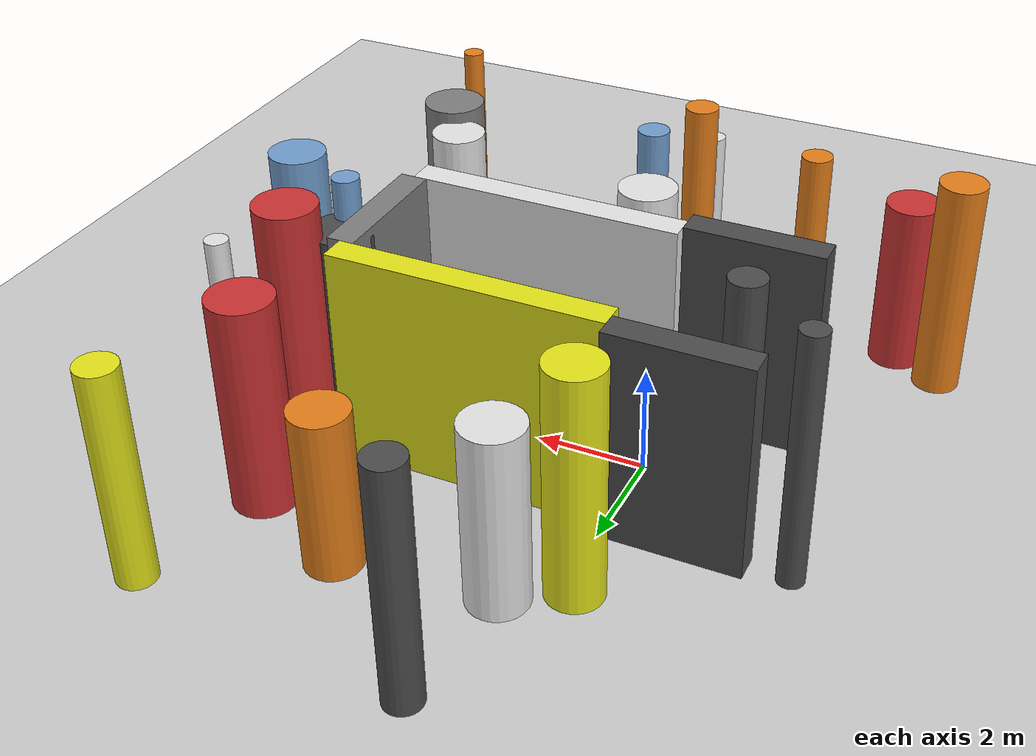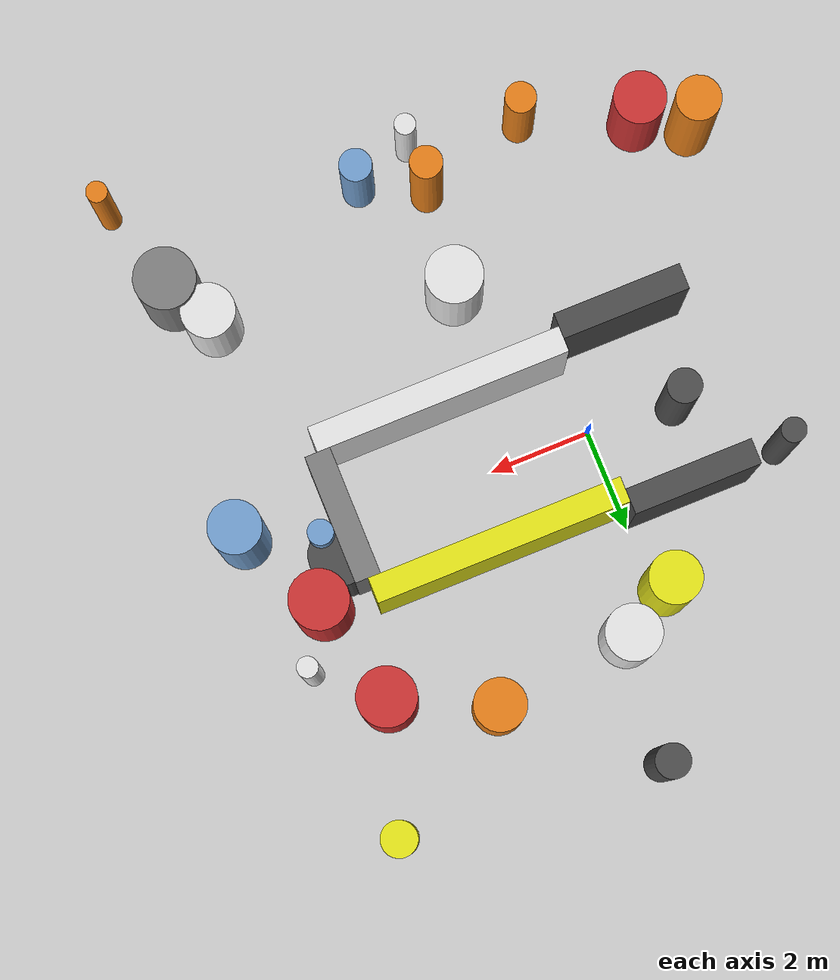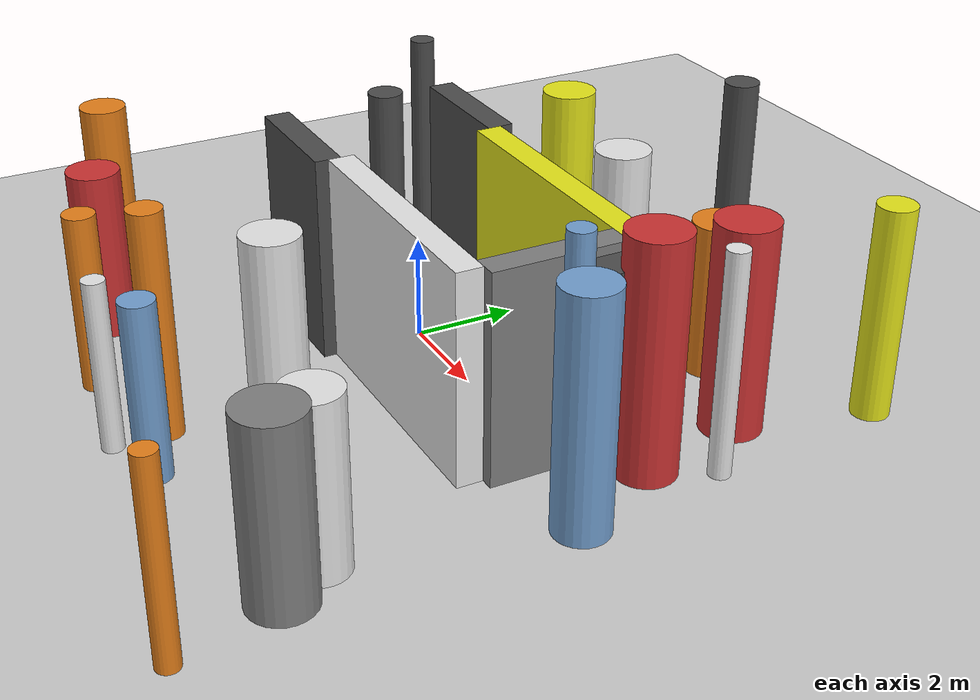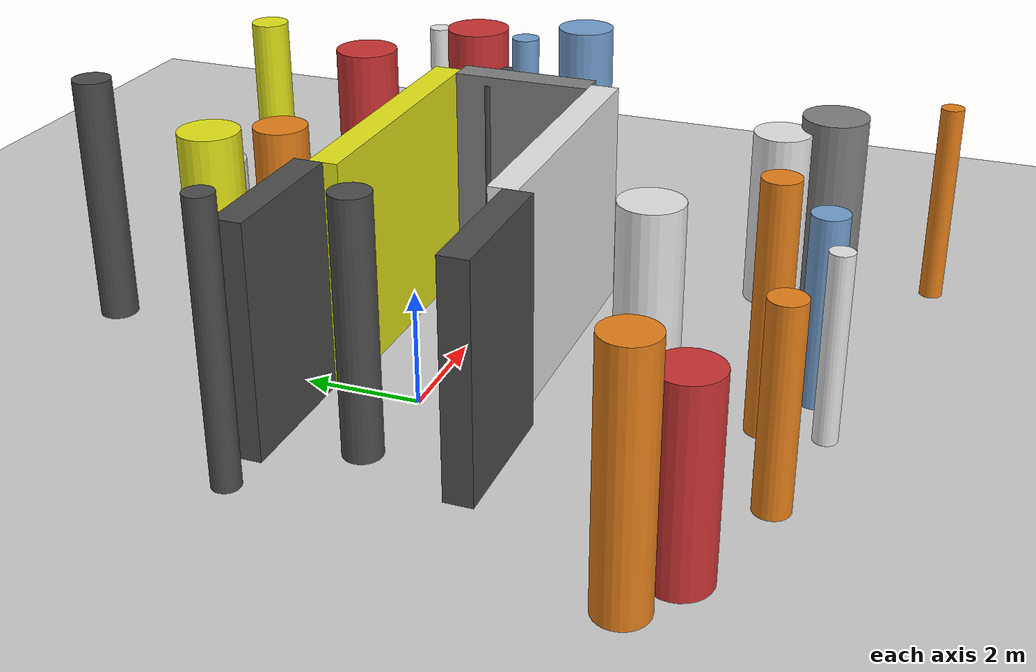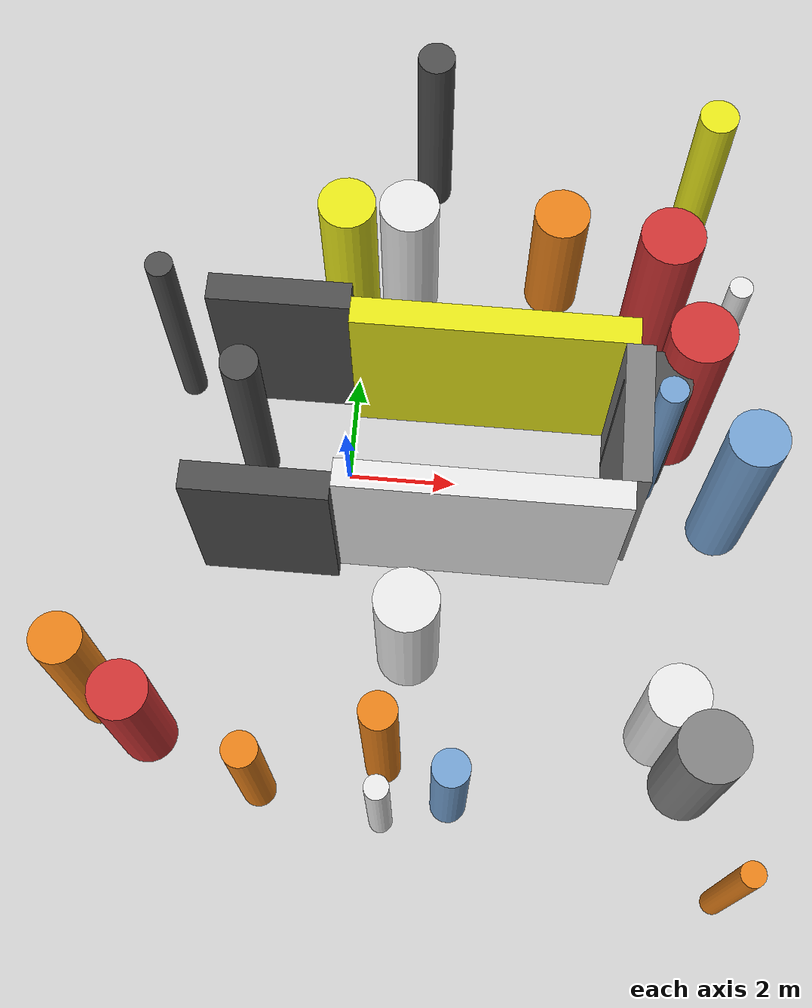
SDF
<?xml version='1.0'?>
<sdf version='1.6'>
  <world name='routeA_rl_v1__dense_recovery__rl_train__cul_de_sac_trap__000034'>
    <!-- Sun light -->
    <light name='sun' type='directional'>
      <cast_shadows>1</cast_shadows>
      <pose>0 0 10 0 0 0</pose>
      <diffuse>0.8 0.8 0.8 1</diffuse>
      <specular>0.2 0.2 0.2 1</specular>
      <attenuation>
        <range>1000</range>
        <constant>0.9</constant>
        <linear>0.01</linear>
        <quadratic>0.001</quadratic>
      </attenuation>
      <direction>-0.5 0.1 -0.9</direction>
    </light>

    <!-- Ground plane -->
    <model name='ground_plane'>
      <static>1</static>
      <link name='link'>
        <collision name='collision'>
          <geometry>
            <plane>
              <normal>0 0 1</normal>
              <size>100 100</size>
            </plane>
          </geometry>
          <surface>
            <contact>
              <collide_bitmask>65535</collide_bitmask>
              <ode/>
            </contact>
            <friction>
              <ode>
                <mu>100</mu>
                <mu2>50</mu2>
              </ode>
              <torsional><ode/></torsional>
            </friction>
            <bounce/>
          </surface>
          <max_contacts>10</max_contacts>
        </collision>
        <visual name='visual'>
          <cast_shadows>0</cast_shadows>
          <geometry>
            <plane>
              <normal>0 0 1</normal>
              <size>100 100</size>
            </plane>
          </geometry>
          <material>
            <script>
              <uri>file://media/materials/scripts/gazebo.material</uri>
              <n>Gazebo/Grey</n>
            </script>
          </material>
        </visual>
      </link>
    </model>

    <!-- Environment -->
    <magnetic_field>6e-06 2.3e-05 -4.2e-05</magnetic_field>
    <atmosphere type='adiabatic'/>
    <physics name='default_physics' default='0' type='ode'>
      <gravity>0 0 -9.8</gravity>
      <max_step_size>0.004</max_step_size>
      <real_time_factor>1</real_time_factor>
      <real_time_update_rate>250</real_time_update_rate>
    </physics>
    <scene>
      <ambient>0.4 0.4 0.4 1</ambient>
      <background>0.7 0.7 0.7 1</background>
      <shadows>1</shadows>
    </scene>
    <wind/>
    <spherical_coordinates>
      <surface_model>EARTH_WGS84</surface_model>
      <latitude_deg>0</latitude_deg>
      <longitude_deg>0</longitude_deg>
      <elevation>0</elevation>
      <heading_deg>0</heading_deg>
    </spherical_coordinates>

    <!-- ============ OBSTACLES (28) ============ -->
    <model name='trap_side_l'>
      <static>1</static>
      <link name='link'>
        <visual name='visual'>
          <geometry>
            <box>
              <size>5.0000 0.5000 4.0000</size>
            </box>
          </geometry>
          <material>
            <script>
              <n>Gazebo/White</n>
              <uri>file://media/materials/scripts/gazebo.material</uri>
            </script>
            <ambient>0.9 0.9 0.9 1</ambient>
          </material>
        </visual>
        <collision name='collision'>
          <geometry>
            <box>
              <size>5.0000 0.5000 4.0000</size>
            </box>
          </geometry>
          <max_contacts>10</max_contacts>
          <surface>
            <contact><ode/></contact>
            <bounce/>
            <friction>
              <ode><mu>1</mu><mu2>1</mu2></ode>
              <torsional><ode/></torsional>
            </friction>
          </surface>
        </collision>
      </link>
      <pose>2.5000 -1.5000 2.0000 0 0 0.0000</pose>
    </model>

    <model name='trap_side_r'>
      <static>1</static>
      <link name='link'>
        <visual name='visual'>
          <geometry>
            <box>
              <size>5.0000 0.5000 4.0000</size>
            </box>
          </geometry>
          <material>
            <script>
              <n>Gazebo/Yellow</n>
              <uri>file://media/materials/scripts/gazebo.material</uri>
            </script>
            <ambient>0.9 0.9 0.1 1</ambient>
          </material>
        </visual>
        <collision name='collision'>
          <geometry>
            <box>
              <size>5.0000 0.5000 4.0000</size>
            </box>
          </geometry>
          <max_contacts>10</max_contacts>
          <surface>
            <contact><ode/></contact>
            <bounce/>
            <friction>
              <ode><mu>1</mu><mu2>1</mu2></ode>
              <torsional><ode/></torsional>
            </friction>
          </surface>
        </collision>
      </link>
      <pose>2.5000 1.5000 2.0000 0 0 0.0000</pose>
    </model>

    <model name='trap_back'>
      <static>1</static>
      <link name='link'>
        <visual name='visual'>
          <geometry>
            <box>
              <size>0.5000 2.5000 4.0000</size>
            </box>
          </geometry>
          <material>
            <script>
              <n>Gazebo/Grey</n>
              <uri>file://media/materials/scripts/gazebo.material</uri>
            </script>
            <ambient>0.5 0.5 0.5 1</ambient>
          </material>
        </visual>
        <collision name='collision'>
          <geometry>
            <box>
              <size>0.5000 2.5000 4.0000</size>
            </box>
          </geometry>
          <max_contacts>10</max_contacts>
          <surface>
            <contact><ode/></contact>
            <bounce/>
            <friction>
              <ode><mu>1</mu><mu2>1</mu2></ode>
              <torsional><ode/></torsional>
            </friction>
          </surface>
        </collision>
      </link>
      <pose>5.0000 0.0000 2.0000 0 0 0.0000</pose>
    </model>

    <model name='trap_funnel_l'>
      <static>1</static>
      <link name='link'>
        <visual name='visual'>
          <geometry>
            <box>
              <size>2.5000 0.5000 4.0000</size>
            </box>
          </geometry>
          <material>
            <script>
              <n>Gazebo/DarkGrey</n>
              <uri>file://media/materials/scripts/gazebo.material</uri>
            </script>
            <ambient>0.3 0.3 0.3 1</ambient>
          </material>
        </visual>
        <collision name='collision'>
          <geometry>
            <box>
              <size>2.5000 0.5000 4.0000</size>
            </box>
          </geometry>
          <max_contacts>10</max_contacts>
          <surface>
            <contact><ode/></contact>
            <bounce/>
            <friction>
              <ode><mu>1</mu><mu2>1</mu2></ode>
              <torsional><ode/></torsional>
            </friction>
          </surface>
        </collision>
      </link>
      <pose>-1.2500 -1.7500 2.0000 0 0 0.0000</pose>
    </model>

    <model name='trap_funnel_r'>
      <static>1</static>
      <link name='link'>
        <visual name='visual'>
          <geometry>
            <box>
              <size>2.5000 0.5000 4.0000</size>
            </box>
          </geometry>
          <material>
            <script>
              <n>Gazebo/DarkGrey</n>
              <uri>file://media/materials/scripts/gazebo.material</uri>
            </script>
            <ambient>0.3 0.3 0.3 1</ambient>
          </material>
        </visual>
        <collision name='collision'>
          <geometry>
            <box>
              <size>2.5000 0.5000 4.0000</size>
            </box>
          </geometry>
          <max_contacts>10</max_contacts>
          <surface>
            <contact><ode/></contact>
            <bounce/>
            <friction>
              <ode><mu>1</mu><mu2>1</mu2></ode>
              <torsional><ode/></torsional>
            </friction>
          </surface>
        </collision>
      </link>
      <pose>-1.2500 1.7500 2.0000 0 0 0.0000</pose>
    </model>

    <model name='trap_scatter_0'>
      <static>1</static>
      <link name='link'>
        <visual name='visual'>
          <geometry>
            <cylinder>
              <radius>0.4329</radius>
              <length>4.1769</length>
            </cylinder>
          </geometry>
          <material>
            <script>
              <n>Gazebo/Orange</n>
              <uri>file://media/materials/scripts/gazebo.material</uri>
            </script>
            <ambient>0.9 0.5 0.1 1</ambient>
          </material>
        </visual>
        <collision name='collision'>
          <geometry>
            <cylinder>
              <radius>0.4329</radius>
              <length>4.1769</length>
            </cylinder>
          </geometry>
          <max_contacts>10</max_contacts>
          <surface>
            <contact><ode/></contact>
            <bounce/>
            <friction>
              <ode><mu>1</mu><mu2>1</mu2></ode>
              <torsional><ode/></torsional>
            </friction>
          </surface>
        </collision>
      </link>
      <pose>-3.9899 -4.7010 2.0885 0 0 0.0000</pose>
    </model>

    <model name='trap_scatter_1'>
      <static>1</static>
      <link name='link'>
        <visual name='visual'>
          <geometry>
            <cylinder>
              <radius>0.5722</radius>
              <length>4.5000</length>
            </cylinder>
          </geometry>
          <material>
            <script>
              <n>Gazebo/Red</n>
              <uri>file://media/materials/scripts/gazebo.material</uri>
            </script>
            <ambient>0.8 0.2 0.2 1</ambient>
          </material>
        </visual>
        <collision name='collision'>
          <geometry>
            <cylinder>
              <radius>0.5722</radius>
              <length>4.5000</length>
            </cylinder>
          </geometry>
          <max_contacts>10</max_contacts>
          <surface>
            <contact><ode/></contact>
            <bounce/>
            <friction>
              <ode><mu>1</mu><mu2>1</mu2></ode>
              <torsional><ode/></torsional>
            </friction>
          </surface>
        </collision>
      </link>
      <pose>5.9798 1.3063 2.2500 0 0 0.0000</pose>
    </model>

    <model name='trap_scatter_2'>
      <static>1</static>
      <link name='link'>
        <visual name='visual'>
          <geometry>
            <cylinder>
              <radius>0.3370</radius>
              <length>4.4416</length>
            </cylinder>
          </geometry>
          <material>
            <script>
              <n>Gazebo/DarkGrey</n>
              <uri>file://media/materials/scripts/gazebo.material</uri>
            </script>
            <ambient>0.3 0.3 0.3 1</ambient>
          </material>
        </visual>
        <collision name='collision'>
          <geometry>
            <cylinder>
              <radius>0.3370</radius>
              <length>4.4416</length>
            </cylinder>
          </geometry>
          <max_contacts>10</max_contacts>
          <surface>
            <contact><ode/></contact>
            <bounce/>
            <friction>
              <ode><mu>1</mu><mu2>1</mu2></ode>
              <torsional><ode/></torsional>
            </friction>
          </surface>
        </collision>
      </link>
      <pose>1.0976 6.4455 2.2208 0 0 0.0000</pose>
    </model>

    <model name='trap_scatter_3'>
      <static>1</static>
      <link name='link'>
        <visual name='visual'>
          <geometry>
            <cylinder>
              <radius>0.5747</radius>
              <length>4.0114</length>
            </cylinder>
          </geometry>
          <material>
            <script>
              <n>Gazebo/Red</n>
              <uri>file://media/materials/scripts/gazebo.material</uri>
            </script>
            <ambient>0.8 0.2 0.2 1</ambient>
          </material>
        </visual>
        <collision name='collision'>
          <geometry>
            <cylinder>
              <radius>0.5747</radius>
              <length>4.0114</length>
            </cylinder>
          </geometry>
          <max_contacts>10</max_contacts>
          <surface>
            <contact><ode/></contact>
            <bounce/>
            <friction>
              <ode><mu>1</mu><mu2>1</mu2></ode>
              <torsional><ode/></torsional>
            </friction>
          </surface>
        </collision>
      </link>
      <pose>5.4939 3.3982 2.0057 0 0 0.0000</pose>
    </model>

    <model name='trap_scatter_4'>
      <static>1</static>
      <link name='link'>
        <visual name='visual'>
          <geometry>
            <cylinder>
              <radius>0.3167</radius>
              <length>3.3378</length>
            </cylinder>
          </geometry>
          <material>
            <script>
              <n>Gazebo/Blue</n>
              <uri>file://media/materials/scripts/gazebo.material</uri>
            </script>
            <ambient>0.447 0.624 0.812 1</ambient>
          </material>
        </visual>
        <collision name='collision'>
          <geometry>
            <cylinder>
              <radius>0.3167</radius>
              <length>3.3378</length>
            </cylinder>
          </geometry>
          <max_contacts>10</max_contacts>
          <surface>
            <contact><ode/></contact>
            <bounce/>
            <friction>
              <ode><mu>1</mu><mu2>1</mu2></ode>
              <torsional><ode/></torsional>
            </friction>
          </surface>
        </collision>
      </link>
      <pose>2.3325 -6.0457 1.6689 0 0 0.0000</pose>
    </model>

    <model name='trap_scatter_5'>
      <static>1</static>
      <link name='link'>
        <visual name='visual'>
          <geometry>
            <cylinder>
              <radius>0.5125</radius>
              <length>3.0070</length>
            </cylinder>
          </geometry>
          <material>
            <script>
              <n>Gazebo/Orange</n>
              <uri>file://media/materials/scripts/gazebo.material</uri>
            </script>
            <ambient>0.9 0.5 0.1 1</ambient>
          </material>
        </visual>
        <collision name='collision'>
          <geometry>
            <cylinder>
              <radius>0.5125</radius>
              <length>3.0070</length>
            </cylinder>
          </geometry>
          <max_contacts>10</max_contacts>
          <surface>
            <contact><ode/></contact>
            <bounce/>
            <friction>
              <ode><mu>1</mu><mu2>1</mu2></ode>
              <torsional><ode/></torsional>
            </friction>
          </surface>
        </collision>
      </link>
      <pose>3.5950 4.2890 1.5035 0 0 0.0000</pose>
    </model>

    <model name='trap_scatter_7'>
      <static>1</static>
      <link name='link'>
        <visual name='visual'>
          <geometry>
            <cylinder>
              <radius>0.3540</radius>
              <length>4.0636</length>
            </cylinder>
          </geometry>
          <material>
            <script>
              <n>Gazebo/Yellow</n>
              <uri>file://media/materials/scripts/gazebo.material</uri>
            </script>
            <ambient>0.9 0.9 0.1 1</ambient>
          </material>
        </visual>
        <collision name='collision'>
          <geometry>
            <cylinder>
              <radius>0.3540</radius>
              <length>4.0636</length>
            </cylinder>
          </geometry>
          <max_contacts>10</max_contacts>
          <surface>
            <contact><ode/></contact>
            <bounce/>
            <friction>
              <ode><mu>1</mu><mu2>1</mu2></ode>
              <torsional><ode/></torsional>
            </friction>
          </surface>
        </collision>
      </link>
      <pose>6.2516 5.8937 2.0318 0 0 0.0000</pose>
    </model>

    <model name='trap_scatter_9'>
      <static>1</static>
      <link name='link'>
        <visual name='visual'>
          <geometry>
            <cylinder>
              <radius>0.3149</radius>
              <length>4.3096</length>
            </cylinder>
          </geometry>
          <material>
            <script>
              <n>Gazebo/Orange</n>
              <uri>file://media/materials/scripts/gazebo.material</uri>
            </script>
            <ambient>0.9 0.5 0.1 1</ambient>
          </material>
        </visual>
        <collision name='collision'>
          <geometry>
            <cylinder>
              <radius>0.3149</radius>
              <length>4.3096</length>
            </cylinder>
          </geometry>
          <max_contacts>10</max_contacts>
          <surface>
            <contact><ode/></contact>
            <bounce/>
            <friction>
              <ode><mu>1</mu><mu2>1</mu2></ode>
              <torsional><ode/></torsional>
            </friction>
          </surface>
        </collision>
      </link>
      <pose>1.1424 -5.4583 2.1548 0 0 0.0000</pose>
    </model>

    <model name='trap_scatter_10'>
      <static>1</static>
      <link name='link'>
        <visual name='visual'>
          <geometry>
            <cylinder>
              <radius>0.5563</radius>
              <length>3.5260</length>
            </cylinder>
          </geometry>
          <material>
            <script>
              <n>Gazebo/White</n>
              <uri>file://media/materials/scripts/gazebo.material</uri>
            </script>
            <ambient>0.9 0.9 0.9 1</ambient>
          </material>
        </visual>
        <collision name='collision'>
          <geometry>
            <cylinder>
              <radius>0.5563</radius>
              <length>3.5260</length>
            </cylinder>
          </geometry>
          <max_contacts>10</max_contacts>
          <surface>
            <contact><ode/></contact>
            <bounce/>
            <friction>
              <ode><mu>1</mu><mu2>1</mu2></ode>
              <torsional><ode/></torsional>
            </friction>
          </surface>
        </collision>
      </link>
      <pose>1.3998 -3.4263 1.7630 0 0 0.0000</pose>
    </model>

    <model name='trap_scatter_11'>
      <static>1</static>
      <link name='link'>
        <visual name='visual'>
          <geometry>
            <cylinder>
              <radius>0.5974</radius>
              <length>3.4501</length>
            </cylinder>
          </geometry>
          <material>
            <script>
              <n>Gazebo/Grey</n>
              <uri>file://media/materials/scripts/gazebo.material</uri>
            </script>
            <ambient>0.5 0.5 0.5 1</ambient>
          </material>
        </visual>
        <collision name='collision'>
          <geometry>
            <cylinder>
              <radius>0.5974</radius>
              <length>3.4501</length>
            </cylinder>
          </geometry>
          <max_contacts>10</max_contacts>
          <surface>
            <contact><ode/></contact>
            <bounce/>
            <friction>
              <ode><mu>1</mu><mu2>1</mu2></ode>
              <torsional><ode/></torsional>
            </friction>
          </surface>
        </collision>
      </link>
      <pose>6.4232 -5.3846 1.7250 0 0 0.0000</pose>
    </model>

    <model name='trap_scatter_12'>
      <static>1</static>
      <link name='link'>
        <visual name='visual'>
          <geometry>
            <cylinder>
              <radius>0.5073</radius>
              <length>4.3664</length>
            </cylinder>
          </geometry>
          <material>
            <script>
              <n>Gazebo/Yellow</n>
              <uri>file://media/materials/scripts/gazebo.material</uri>
            </script>
            <ambient>0.9 0.9 0.1 1</ambient>
          </material>
        </visual>
        <collision name='collision'>
          <geometry>
            <cylinder>
              <radius>0.5073</radius>
              <length>4.3664</length>
            </cylinder>
          </geometry>
          <max_contacts>10</max_contacts>
          <surface>
            <contact><ode/></contact>
            <bounce/>
            <friction>
              <ode><mu>1</mu><mu2>1</mu2></ode>
              <torsional><ode/></torsional>
            </friction>
          </surface>
        </collision>
      </link>
      <pose>-0.2215 3.3633 2.1832 0 0 0.0000</pose>
    </model>

    <model name='trap_scatter_13'>
      <static>1</static>
      <link name='link'>
        <visual name='visual'>
          <geometry>
            <cylinder>
              <radius>0.2394</radius>
              <length>4.7410</length>
            </cylinder>
          </geometry>
          <material>
            <script>
              <n>Gazebo/DarkGrey</n>
              <uri>file://media/materials/scripts/gazebo.material</uri>
            </script>
            <ambient>0.3 0.3 0.3 1</ambient>
          </material>
        </visual>
        <collision name='collision'>
          <geometry>
            <cylinder>
              <radius>0.2394</radius>
              <length>4.7410</length>
            </cylinder>
          </geometry>
          <max_contacts>10</max_contacts>
          <surface>
            <contact><ode/></contact>
            <bounce/>
            <friction>
              <ode><mu>1</mu><mu2>1</mu2></ode>
              <torsional><ode/></torsional>
            </friction>
          </surface>
        </collision>
      </link>
      <pose>-3.2084 1.6893 2.3705 0 0 0.0000</pose>
    </model>

    <model name='trap_scatter_14'>
      <static>1</static>
      <link name='link'>
        <visual name='visual'>
          <geometry>
            <cylinder>
              <radius>0.2051</radius>
              <length>4.2136</length>
            </cylinder>
          </geometry>
          <material>
            <script>
              <n>Gazebo/White</n>
              <uri>file://media/materials/scripts/gazebo.material</uri>
            </script>
            <ambient>0.9 0.9 0.9 1</ambient>
          </material>
        </visual>
        <collision name='collision'>
          <geometry>
            <cylinder>
              <radius>0.2051</radius>
              <length>4.2136</length>
            </cylinder>
          </geometry>
          <max_contacts>10</max_contacts>
          <surface>
            <contact><ode/></contact>
            <bounce/>
            <friction>
              <ode><mu>1</mu><mu2>1</mu2></ode>
              <torsional><ode/></torsional>
            </friction>
          </surface>
        </collision>
      </link>
      <pose>6.6346 2.3613 2.1068 0 0 0.0000</pose>
    </model>

    <model name='trap_scatter_15'>
      <static>1</static>
      <link name='link'>
        <visual name='visual'>
          <geometry>
            <cylinder>
              <radius>0.5068</radius>
              <length>3.3145</length>
            </cylinder>
          </geometry>
          <material>
            <script>
              <n>Gazebo/Red</n>
              <uri>file://media/materials/scripts/gazebo.material</uri>
            </script>
            <ambient>0.8 0.2 0.2 1</ambient>
          </material>
        </visual>
        <collision name='collision'>
          <geometry>
            <cylinder>
              <radius>0.5068</radius>
              <length>3.3145</length>
            </cylinder>
          </geometry>
          <max_contacts>10</max_contacts>
          <surface>
            <contact><ode/></contact>
            <bounce/>
            <friction>
              <ode><mu>1</mu><mu2>1</mu2></ode>
              <torsional><ode/></torsional>
            </friction>
          </surface>
        </collision>
      </link>
      <pose>-3.0816 -5.2422 1.6572 0 0 0.0000</pose>
    </model>

    <model name='trap_scatter_16'>
      <static>1</static>
      <link name='link'>
        <visual name='visual'>
          <geometry>
            <cylinder>
              <radius>0.5245</radius>
              <length>3.2281</length>
            </cylinder>
          </geometry>
          <material>
            <script>
              <n>Gazebo/White</n>
              <uri>file://media/materials/scripts/gazebo.material</uri>
            </script>
            <ambient>0.9 0.9 0.9 1</ambient>
          </material>
        </visual>
        <collision name='collision'>
          <geometry>
            <cylinder>
              <radius>0.5245</radius>
              <length>3.2281</length>
            </cylinder>
          </geometry>
          <max_contacts>10</max_contacts>
          <surface>
            <contact><ode/></contact>
            <bounce/>
            <friction>
              <ode><mu>1</mu><mu2>1</mu2></ode>
              <torsional><ode/></torsional>
            </friction>
          </surface>
        </collision>
      </link>
      <pose>5.8995 -4.5533 1.6140 0 0 0.0000</pose>
    </model>

    <model name='trap_scatter_17'>
      <static>1</static>
      <link name='link'>
        <visual name='visual'>
          <geometry>
            <cylinder>
              <radius>0.3323</radius>
              <length>4.3813</length>
            </cylinder>
          </geometry>
          <material>
            <script>
              <n>Gazebo/DarkGrey</n>
              <uri>file://media/materials/scripts/gazebo.material</uri>
            </script>
            <ambient>0.3 0.3 0.3 1</ambient>
          </material>
        </visual>
        <collision name='collision'>
          <geometry>
            <cylinder>
              <radius>0.3323</radius>
              <length>4.3813</length>
            </cylinder>
          </geometry>
          <max_contacts>10</max_contacts>
          <surface>
            <contact><ode/></contact>
            <bounce/>
            <friction>
              <ode><mu>1</mu><mu2>1</mu2></ode>
              <torsional><ode/></torsional>
            </friction>
          </surface>
        </collision>
      </link>
      <pose>-1.7028 0.1673 2.1906 0 0 0.0000</pose>
    </model>

    <model name='trap_scatter_18'>
      <static>1</static>
      <link name='link'>
        <visual name='visual'>
          <geometry>
            <cylinder>
              <radius>0.2063</radius>
              <length>3.2516</length>
            </cylinder>
          </geometry>
          <material>
            <script>
              <n>Gazebo/White</n>
              <uri>file://media/materials/scripts/gazebo.material</uri>
            </script>
            <ambient>0.9 0.9 0.9 1</ambient>
          </material>
        </visual>
        <collision name='collision'>
          <geometry>
            <cylinder>
              <radius>0.2063</radius>
              <length>3.2516</length>
            </cylinder>
          </geometry>
          <max_contacts>10</max_contacts>
          <surface>
            <contact><ode/></contact>
            <bounce/>
            <friction>
              <ode><mu>1</mu><mu2>1</mu2></ode>
              <torsional><ode/></torsional>
            </friction>
          </surface>
        </collision>
      </link>
      <pose>1.1830 -6.4296 1.6258 0 0 0.0000</pose>
    </model>

    <model name='trap_scatter_19'>
      <static>1</static>
      <link name='link'>
        <visual name='visual'>
          <geometry>
            <cylinder>
              <radius>0.5847</radius>
              <length>3.8316</length>
            </cylinder>
          </geometry>
          <material>
            <script>
              <n>Gazebo/DarkGrey</n>
              <uri>file://media/materials/scripts/gazebo.material</uri>
            </script>
            <ambient>0.3 0.3 0.3 1</ambient>
          </material>
        </visual>
        <collision name='collision'>
          <geometry>
            <cylinder>
              <radius>0.5847</radius>
              <length>3.8316</length>
            </cylinder>
          </geometry>
          <max_contacts>10</max_contacts>
          <surface>
            <contact><ode/></contact>
            <bounce/>
            <friction>
              <ode><mu>1</mu><mu2>1</mu2></ode>
              <torsional><ode/></torsional>
            </friction>
          </surface>
        </collision>
      </link>
      <pose>5.3277 0.6448 1.9158 0 0 0.0000</pose>
    </model>

    <model name='trap_scatter_20'>
      <static>1</static>
      <link name='link'>
        <visual name='visual'>
          <geometry>
            <cylinder>
              <radius>0.2453</radius>
              <length>4.5688</length>
            </cylinder>
          </geometry>
          <material>
            <script>
              <n>Gazebo/Blue</n>
              <uri>file://media/materials/scripts/gazebo.material</uri>
            </script>
            <ambient>0.447 0.624 0.812 1</ambient>
          </material>
        </visual>
        <collision name='collision'>
          <geometry>
            <cylinder>
              <radius>0.2453</radius>
              <length>4.5688</length>
            </cylinder>
          </geometry>
          <max_contacts>10</max_contacts>
          <surface>
            <contact><ode/></contact>
            <bounce/>
            <friction>
              <ode><mu>1</mu><mu2>1</mu2></ode>
              <torsional><ode/></torsional>
            </friction>
          </surface>
        </collision>
      </link>
      <pose>5.4947 0.1827 2.2844 0 0 0.0000</pose>
    </model>

    <model name='trap_scatter_21'>
      <static>1</static>
      <link name='link'>
        <visual name='visual'>
          <geometry>
            <cylinder>
              <radius>0.2051</radius>
              <length>3.6613</length>
            </cylinder>
          </geometry>
          <material>
            <script>
              <n>Gazebo/Orange</n>
              <uri>file://media/materials/scripts/gazebo.material</uri>
            </script>
            <ambient>0.9 0.5 0.1 1</ambient>
          </material>
        </visual>
        <collision name='collision'>
          <geometry>
            <cylinder>
              <radius>0.2051</radius>
              <length>3.6613</length>
            </cylinder>
          </geometry>
          <max_contacts>10</max_contacts>
          <surface>
            <contact><ode/></contact>
            <bounce/>
            <friction>
              <ode><mu>1</mu><mu2>1</mu2></ode>
              <torsional><ode/></torsional>
            </friction>
          </surface>
        </collision>
      </link>
      <pose>6.9897 -7.3268 1.8306 0 0 0.0000</pose>
    </model>

    <model name='trap_scatter_22'>
      <static>1</static>
      <link name='link'>
        <visual name='visual'>
          <geometry>
            <cylinder>
              <radius>0.3005</radius>
              <length>3.4527</length>
            </cylinder>
          </geometry>
          <material>
            <script>
              <n>Gazebo/Orange</n>
              <uri>file://media/materials/scripts/gazebo.material</uri>
            </script>
            <ambient>0.9 0.5 0.1 1</ambient>
          </material>
        </visual>
        <collision name='collision'>
          <geometry>
            <cylinder>
              <radius>0.3005</radius>
              <length>3.4527</length>
            </cylinder>
          </geometry>
          <max_contacts>10</max_contacts>
          <surface>
            <contact><ode/></contact>
            <bounce/>
            <friction>
              <ode><mu>1</mu><mu2>1</mu2></ode>
              <torsional><ode/></torsional>
            </friction>
          </surface>
        </collision>
      </link>
      <pose>-0.9991 -6.0559 1.7264 0 0 0.0000</pose>
    </model>

    <model name='trap_scatter_23'>
      <static>1</static>
      <link name='link'>
        <visual name='visual'>
          <geometry>
            <cylinder>
              <radius>0.5133</radius>
              <length>4.4381</length>
            </cylinder>
          </geometry>
          <material>
            <script>
              <n>Gazebo/Blue</n>
              <uri>file://media/materials/scripts/gazebo.material</uri>
            </script>
            <ambient>0.447 0.624 0.812 1</ambient>
          </material>
        </visual>
        <collision name='collision'>
          <geometry>
            <cylinder>
              <radius>0.5133</radius>
              <length>4.4381</length>
            </cylinder>
          </geometry>
          <max_contacts>10</max_contacts>
          <surface>
            <contact><ode/></contact>
            <bounce/>
            <friction>
              <ode><mu>1</mu><mu2>1</mu2></ode>
              <torsional><ode/></torsional>
            </friction>
          </surface>
        </collision>
      </link>
      <pose>6.9129 -0.5043 2.2191 0 0 0.0000</pose>
    </model>

    <model name='trap_scatter_24'>
      <static>1</static>
      <link name='link'>
        <visual name='visual'>
          <geometry>
            <cylinder>
              <radius>0.5455</radius>
              <length>3.4070</length>
            </cylinder>
          </geometry>
          <material>
            <script>
              <n>Gazebo/White</n>
              <uri>file://media/materials/scripts/gazebo.material</uri>
            </script>
            <ambient>0.9 0.9 0.9 1</ambient>
          </material>
        </visual>
        <collision name='collision'>
          <geometry>
            <cylinder>
              <radius>0.5455</radius>
              <length>3.4070</length>
            </cylinder>
          </geometry>
          <max_contacts>10</max_contacts>
          <surface>
            <contact><ode/></contact>
            <bounce/>
            <friction>
              <ode><mu>1</mu><mu2>1</mu2></ode>
              <torsional><ode/></torsional>
            </friction>
          </surface>
        </collision>
      </link>
      <pose>0.8106 3.9834 1.7035 0 0 0.0000</pose>
    </model>

    <!-- GUI camera -->
    <gui fullscreen='0'>
      <camera name='user_camera'>
        <pose>-15 0 18 0 0.85 0.15</pose>
        <view_controller>orbit</view_controller>
        <projection_type>perspective</projection_type>
      </camera>
    </gui>
  </world>
</sdf>
